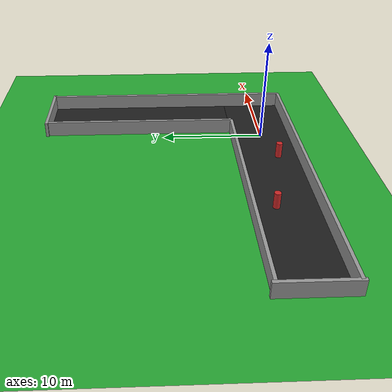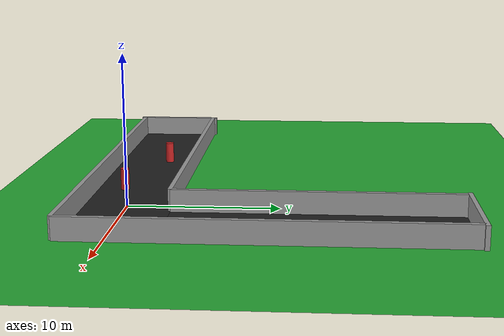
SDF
<?xml version="1.0" ?>
<sdf version="1.6">
  <world name="road_world">

    <!-- ====== 物理引擎 ====== -->
    <physics type="ode">
      <max_step_size>0.001</max_step_size>
      <real_time_factor>1.0</real_time_factor>
      <real_time_update_rate>1000</real_time_update_rate>
    </physics>

    <!-- ====== 光照 ====== -->
    <include>
      <uri>model://sun</uri>
    </include>

    <!-- ====== 地面（草地）====== -->
    <model name="ground_plane">
      <static>true</static>
      <link name="link">
        <collision name="collision">
          <geometry>
            <plane>
              <normal>0 0 1</normal>
              <size>100 100</size>
            </plane>
          </geometry>
          <surface>
            <friction>
              <ode>
                <mu>100</mu>
                <mu2>50</mu2>
              </ode>
            </friction>
          </surface>
        </collision>
        <visual name="visual">
          <geometry>
            <plane>
              <normal>0 0 1</normal>
              <size>100 100</size>
            </plane>
          </geometry>
          <material>
            <script>
              <uri>file://media/materials/scripts/gazebo.material</uri>
              <name>Gazebo/Green</name>
            </script>
          </material>
        </visual>
      </link>
    </model>

    <!-- ====== 沥青路面（visual-only，仅肉眼识别道路）====== -->

    <!-- 水平段沥青：覆盖 x=-22..7, y=-3..3 -->
    <model name="asphalt_h">
      <static>true</static>
      <pose>-7.5 0 0.005 0 0 0</pose>
      <link name="link">
        <visual name="visual">
          <geometry><box><size>29.0 6.0 0.01</size></box></geometry>
          <material><script><uri>file://media/materials/scripts/gazebo.material</uri><name>Gazebo/Black</name></script></material>
        </visual>
      </link>
    </model>

    <!-- 垂直段沥青：覆盖 x=1..7, y=3..22 -->
    <model name="asphalt_v">
      <static>true</static>
      <pose>4 12.5 0.005 0 0 0</pose>
      <link name="link">
        <visual name="visual">
          <geometry><box><size>6.0 19.0 0.01</size></box></geometry>
          <material><script><uri>file://media/materials/scripts/gazebo.material</uri><name>Gazebo/Black</name></script></material>
        </visual>
      </link>
    </model>

    <!-- ====== 路缘墙（collision+visual，激光可见，定义走廊）====== -->
    <!-- 高 1.5m、厚 0.3m、灰色混凝土；z=0.75 表示底面贴地 -->

    <!-- 南路缘：y=-3，x 从 -22 到 7（含弯道外侧）-->
    <model name="curb_south">
      <static>true</static>
      <pose>-7.5 -3 0.75 0 0 0</pose>
      <link name="link">
        <collision name="collision"><geometry><box><size>29.0 0.3 1.5</size></box></geometry></collision>
        <visual name="visual">
          <geometry><box><size>29.0 0.3 1.5</size></box></geometry>
          <material><script><uri>file://media/materials/scripts/gazebo.material</uri><name>Gazebo/Grey</name></script></material>
        </visual>
      </link>
    </model>

    <!-- 北路缘：y=+3，x 从 -22 到 1（在弯道口停止，让出向北的转弯开口）-->
    <model name="curb_north">
      <static>true</static>
      <pose>-10.5 3 0.75 0 0 0</pose>
      <link name="link">
        <collision name="collision"><geometry><box><size>23.0 0.3 1.5</size></box></geometry></collision>
        <visual name="visual">
          <geometry><box><size>23.0 0.3 1.5</size></box></geometry>
          <material><script><uri>file://media/materials/scripts/gazebo.material</uri><name>Gazebo/Grey</name></script></material>
        </visual>
      </link>
    </model>

    <!-- 垂直走廊西路缘：x=1，y 从 3 到 22（衔接北路缘末端）-->
    <model name="curb_vert_west">
      <static>true</static>
      <pose>1 12.5 0.75 0 0 0</pose>
      <link name="link">
        <collision name="collision"><geometry><box><size>0.3 19.0 1.5</size></box></geometry></collision>
        <visual name="visual">
          <geometry><box><size>0.3 19.0 1.5</size></box></geometry>
          <material><script><uri>file://media/materials/scripts/gazebo.material</uri><name>Gazebo/Grey</name></script></material>
        </visual>
      </link>
    </model>

    <!-- 垂直走廊东路缘：x=7，y 从 -3 到 22（兼作水平走廊的东端封堵 = 弯道外墙）-->
    <model name="curb_vert_east">
      <static>true</static>
      <pose>7 9.5 0.75 0 0 0</pose>
      <link name="link">
        <collision name="collision"><geometry><box><size>0.3 25.0 1.5</size></box></geometry></collision>
        <visual name="visual">
          <geometry><box><size>0.3 25.0 1.5</size></box></geometry>
          <material><script><uri>file://media/materials/scripts/gazebo.material</uri><name>Gazebo/Grey</name></script></material>
        </visual>
      </link>
    </model>

    <!-- 西端封堵：x=-22，y 从 -3.3 到 3.3（出生点背后封死，走廊闭合）-->
    <model name="curb_west_cap">
      <static>true</static>
      <pose>-22 0 0.75 0 0 0</pose>
      <link name="link">
        <collision name="collision"><geometry><box><size>0.3 6.6 1.5</size></box></geometry></collision>
        <visual name="visual">
          <geometry><box><size>0.3 6.6 1.5</size></box></geometry>
          <material><script><uri>file://media/materials/scripts/gazebo.material</uri><name>Gazebo/Grey</name></script></material>
        </visual>
      </link>
    </model>

    <!-- 北端封堵：y=22，x 从 0.7 到 7.3（垂直走廊尽头）-->
    <model name="curb_north_cap">
      <static>true</static>
      <pose>4 22 0.75 0 0 0</pose>
      <link name="link">
        <collision name="collision"><geometry><box><size>6.6 0.3 1.5</size></box></geometry></collision>
        <visual name="visual">
          <geometry><box><size>6.6 0.3 1.5</size></box></geometry>
          <material><script><uri>file://media/materials/scripts/gazebo.material</uri><name>Gazebo/Grey</name></script></material>
        </visual>
      </link>
    </model>

    <!-- ====== 路中障碍：圆柱（验证绕行 + 回中）====== -->
    <!-- r=0.3m、高 1.5m、红色；落在水平走廊内，不横贯全路 → 可绕 -->

    <!-- 圆柱 A：(-12, 0.8)，偏北 -->
    <model name="pillar_a">
      <static>true</static>
      <pose>-12 0.8 0.75 0 0 0</pose>
      <link name="link">
        <collision name="collision"><geometry><cylinder><radius>0.3</radius><length>1.5</length></cylinder></geometry></collision>
        <visual name="visual">
          <geometry><cylinder><radius>0.3</radius><length>1.5</length></cylinder></geometry>
          <material><script><uri>file://media/materials/scripts/gazebo.material</uri><name>Gazebo/Red</name></script></material>
        </visual>
      </link>
    </model>

    <!-- 圆柱 B：(-4, -1.0)，偏南 -->
    <model name="pillar_b">
      <static>true</static>
      <pose>-4 -1.0 0.75 0 0 0</pose>
      <link name="link">
        <collision name="collision"><geometry><cylinder><radius>0.3</radius><length>1.5</length></cylinder></geometry></collision>
        <visual name="visual">
          <geometry><cylinder><radius>0.3</radius><length>1.5</length></cylinder></geometry>
          <material><script><uri>file://media/materials/scripts/gazebo.material</uri><name>Gazebo/Red</name></script></material>
        </visual>
      </link>
    </model>

  </world>
</sdf>
